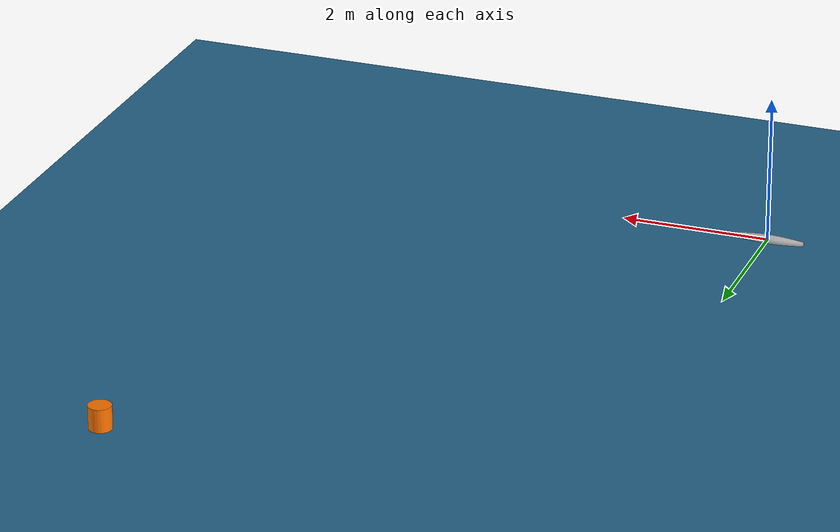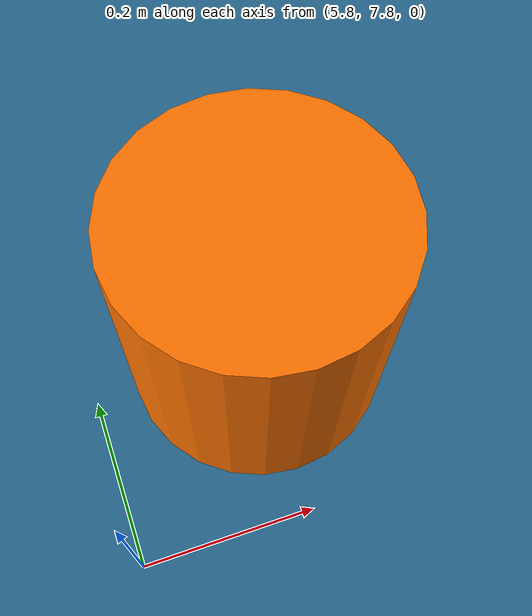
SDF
<?xml version="1.0"?>
<sdf version="1.7">
  <world name="lotusim">
    <scene>
      <ambient>1.0 1.0 1.0</ambient>
      <background>0.6 0.75 0.9</background>
      <grid>false</grid>
    </scene>

    <physics type="ode">
      <max_step_size>0.05</max_step_size>
      <real_time_factor>1</real_time_factor>
      <real_time_update_rate>20</real_time_update_rate>
    </physics>

    <spherical_coordinates>
      <surface_model>EARTH_WGS84</surface_model>
      <world_frame_orientation>ENU</world_frame_orientation>
      <latitude_deg>1.2421</latitude_deg>
      <longitude_deg>103.7198</longitude_deg>
      <elevation>0</elevation>
      <heading_deg>0</heading_deg>
    </spherical_coordinates>

    <!-- xdyn provides all forces; Gazebo gravity is off. -->
    <gravity>0 0 0</gravity>

    <plugin filename="physics_interface_plugin"
            name="lotusim::gazebo::PhysicsInterfacePlugin"/>
    <plugin filename="entity_manager_plugin"
            name="lotusim::gazebo::EntityManager"/>
    <plugin filename="lotusim_sensor_plugin"
            name="lotusim::sensor::LotusimSensorPlugin"/>
    <plugin filename="render_plugin" name="lotusim::gazebo::RenderPlugin">
      <connection_protocol>ROS2</connection_protocol>
    </plugin>
    <plugin filename="gz-sim-scene-broadcaster-system"
            name="gz::sim::systems::SceneBroadcaster"/>

    <light type="directional" name="sun">
      <cast_shadows>true</cast_shadows>
      <pose>0 0 10 0 0 0</pose>
      <diffuse>0.9 0.9 0.9 1</diffuse>
      <specular>0.3 0.3 0.3 1</specular>
      <direction>-0.4 0.3 -0.9</direction>
    </light>

    <!-- Flat sea surface at the waterline (visual only). -->
    <model name="sea">
      <static>true</static>
      <link name="surface">
        <visual name="surface">
          <geometry>
            <plane>
              <normal>0 0 1</normal>
              <size>200 200</size>
            </plane>
          </geometry>
          <material>
            <ambient>0.10 0.30 0.45 1</ambient>
            <diffuse>0.15 0.40 0.55 1</diffuse>
            <specular>0.2 0.2 0.2 1</specular>
          </material>
        </visual>
      </link>
    </model>

    <!-- Race mark (buoy). Position is provisional, tuned to the boat's track. -->
    <model name="mark">
      <static>true</static>
      <pose>6 8 0 0 0 0</pose>
      <link name="buoy">
        <visual name="buoy">
          <geometry>
            <cylinder>
              <radius>0.15</radius>
              <length>0.6</length>
            </cylinder>
          </geometry>
          <material>
            <ambient>0.9 0.4 0.0 1</ambient>
            <diffuse>1.0 0.45 0.0 1</diffuse>
          </material>
        </visual>
      </link>
    </model>

    <include>
      <uri>model://focus_v2</uri>
      <name>focus_v2</name>
      <pose>0 0 0 0 0 0</pose>

      <lotus_param>
        <physics_engine_interface>
          <surface>
            <connection_type>XDynWebSocket</connection_type>
            <uri>ws://127.0.0.1:12345</uri>
            <control_surfaces>
              <sail>mainsail(sheet)</sail>
              <rudder>rudder(helm)</rudder>
            </control_surfaces>
          </surface>
          <init_state>Surface</init_state>
        </physics_engine_interface>
        <render_interface>
          <publish_render>true</publish_render>
          <renderer_type_name>focus_v2</renderer_type_name>
        </render_interface>
      </lotus_param>
    </include>
  </world>
</sdf>

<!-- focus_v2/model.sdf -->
<sdf version="1.10">
  <model name="focus_v2">
    <!-- Physics is provided by the external xdyn co-simulation (see focus_v2.yaml);
         Gazebo only carries the visual + a coarse collision box. -->
    <link name="base_link">
      <visual name="visual">
        <!-- OBJ renders in the Gazebo GUI (the Blender COLLADA loader fails
             silently in gz-common). Mesh is modelled bow on +Y to match the
             vessel advance axis in the link frame. -->
        <geometry>
          <mesh>
            <uri>model://focus_v2/meshes/focus_v2.obj</uri>
          </mesh>
        </geometry>
      </visual>

      <collision name="base_collision">
        <geometry>
          <box>
            <size>0.17 0.995 0.13</size>
          </box>
        </geometry>
      </collision>
    </link>
  </model>
</sdf>
